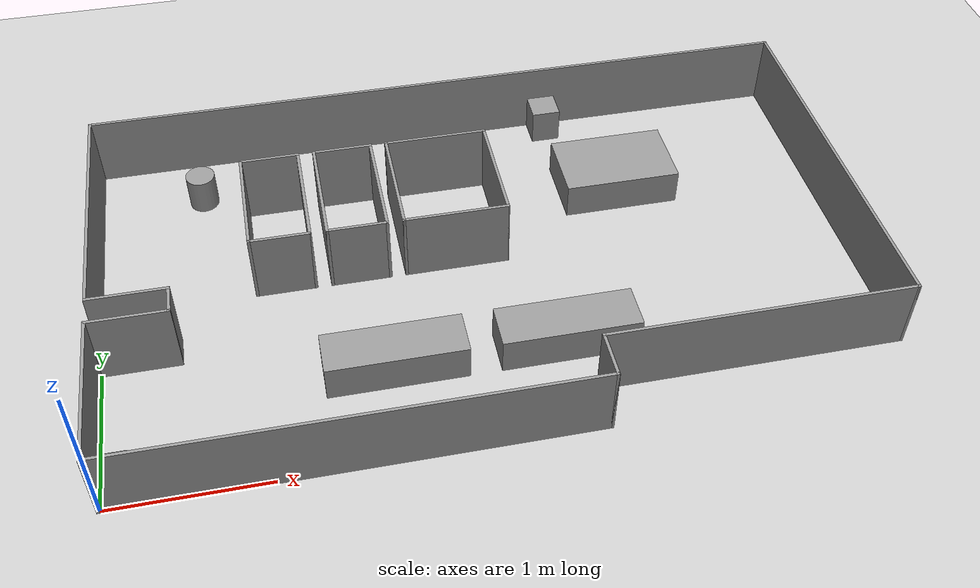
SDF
<sdf version="1.7">
 <world name="default">
  <light name="sun" type="directional">
   <pose>0 0 10 0 -0 0</pose>
   <diffuse>0.8 0.8 0.8 1</diffuse>
   <specular>0.2 0.2 0.2 1</specular>
   <attenuation>
    <range>1000</range>
    <constant>0.9</constant>
    <linear>0.01</linear>
    <quadratic>0.001</quadratic>
   </attenuation>
   <direction>-0.5 0.1 -0.9</direction>
   <spot><inner_angle>0</inner_angle><outer_angle>0</outer_angle><falloff>0</falloff></spot>
  </light>
  <model name="ground_plane">
   <static>1</static>
   <link name="link">
    <collision name="collision">
     <geometry><plane><normal>0 0 1</normal><size>100 100</size></plane></geometry>
     <surface>
      <contact><collide_bitmask>65535</collide_bitmask></contact>
      <friction><ode><mu>100</mu><mu2>50</mu2></ode></friction>
     </surface>
    </collision>
    <visual name="visual">
     <cast_shadows>0</cast_shadows>
     <geometry><plane><normal>0 0 1</normal><size>100 100</size></plane></geometry>
     <material>
      <script><uri>file://media/materials/scripts/gazebo.material</uri><name>Gazebo/Grey</name></script>
     </material>
    </visual>
   </link>
  </model>
  <gravity>0 0 -9.8</gravity>
  <magnetic_field>6e-06 2.3e-05 -4.2e-05</magnetic_field>
  <atmosphere type="adiabatic"/>
  <physics type="ode">
   <max_step_size>0.001</max_step_size>
   <real_time_factor>1</real_time_factor>
   <real_time_update_rate>1000</real_time_update_rate>
  </physics>
  <scene><ambient>0.4 0.4 0.4 1</ambient><background>0.7 0.7 0.7 1</background><shadows>1</shadows></scene>
  <spherical_coordinates>
   <surface_model>EARTH_WGS84</surface_model>
   <latitude_deg>0</latitude_deg>
   <longitude_deg>0</longitude_deg>
   <elevation>0</elevation>
   <heading_deg>0</heading_deg>
  </spherical_coordinates>
  <model name="turtlebot3_ttk4192">
   <pose>2.495 1.4495 0 0 -0 0</pose>
   <link name="Wall_10">
    <collision name="Wall_10_Collision">
     <geometry><box><size>0.21 0.02 0.5</size></box></geometry>
     <pose>0 0 0.25 0 -0 0</pose>
    </collision>
    <visual name="Wall_10_Visual">
     <pose>0 0 0.25 0 -0 0</pose>
     <geometry><box><size>0.21 0.02 0.5</size></box></geometry>
     <material>
      <script><uri>file://media/materials/scripts/gazebo.material</uri><name>Gazebo/Grey</name></script>
      <ambient>1 1 1 1</ambient>
     </material>
     <meta><layer>0</layer></meta>
    </visual>
    <pose>-2.005 -0.35 0 0 -0 -1.5708</pose>
   </link>
   <link name="Wall_11">
    <collision name="Wall_11_Collision">
     <geometry><box><size>0.52 0.02 0.5</size></box></geometry>
     <pose>0 0 0.25 0 -0 0</pose>
    </collision>
    <visual name="Wall_11_Visual">
     <pose>0 0 0.25 0 -0 0</pose>
     <geometry><box><size>0.52 0.02 0.5</size></box></geometry>
     <material>
      <script><uri>file://media/materials/scripts/gazebo.material</uri><name>Gazebo/Grey</name></script>
      <ambient>1 1 1 1</ambient>
     </material>
     <meta><layer>0</layer></meta>
    </visual>
    <pose>-2.255 -0.445 0 0 -0 3.14159</pose>
   </link>
   <link name="Wall_12">
    <collision name="Wall_12_Collision">
     <geometry><box><size>1.03 0.02 0.5</size></box></geometry>
     <pose>0 0 0.25 0 -0 0</pose>
    </collision>
    <visual name="Wall_12_Visual">
     <pose>0 0 0.25 0 -0 0</pose>
     <geometry><box><size>1.03 0.02 0.5</size></box></geometry>
     <material>
      <script><uri>file://media/materials/scripts/gazebo.material</uri><name>Gazebo/Grey</name></script>
      <ambient>1 1 1 1</ambient>
     </material>
     <meta><layer>0</layer></meta>
    </visual>
    <pose>-2.505 -0.95 0 0 -0 -1.5708</pose>
   </link>
   <link name="Wall_14">
    <collision name="Wall_14_Collision">
     <geometry><box><size>0.41 0.02 0.5</size></box></geometry>
     <pose>0 0 0.25 0 -0 0</pose>
    </collision>
    <visual name="Wall_14_Visual">
     <pose>0 0 0.25 0 -0 0</pose>
     <geometry><box><size>0.41 0.02 0.5</size></box></geometry>
     <material>
      <script><uri>file://media/materials/scripts/gazebo.material</uri><name>Gazebo/Grey</name></script>
      <ambient>1 1 1 1</ambient>
     </material>
     <meta><layer>0</layer></meta>
    </visual>
    <pose>-1.3 0.055 0 0 -0 0</pose>
   </link>
   <link name="Wall_15">
    <collision name="Wall_15_Collision">
     <geometry><box><size>0.81 0.02 0.5</size></box></geometry>
     <pose>0 0 0.25 0 -0 0</pose>
    </collision>
    <visual name="Wall_15_Visual">
     <pose>0 0 0.25 0 -0 0</pose>
     <geometry><box><size>0.81 0.02 0.5</size></box></geometry>
     <material>
      <script><uri>file://media/materials/scripts/gazebo.material</uri><name>Gazebo/Grey</name></script>
      <ambient>1 1 1 1</ambient>
     </material>
     <meta><layer>0</layer></meta>
    </visual>
    <pose>-1.105 0.45 0 0 -0 1.5708</pose>
   </link>
   <link name="Wall_16">
    <collision name="Wall_16_Collision">
     <geometry><box><size>0.41 0.02 0.5</size></box></geometry>
     <pose>0 0 0.25 0 -0 0</pose>
    </collision>
    <visual name="Wall_16_Visual">
     <pose>0 0 0.25 0 -0 0</pose>
     <geometry><box><size>0.41 0.02 0.5</size></box></geometry>
     <material>
      <script><uri>file://media/materials/scripts/gazebo.material</uri><name>Gazebo/Grey</name></script>
      <ambient>1 1 1 1</ambient>
     </material>
     <meta><layer>0</layer></meta>
    </visual>
    <pose>-1.3 0.845 0 0 -0 3.14159</pose>
   </link>
   <link name="Wall_17">
    <collision name="Wall_17_Collision">
     <geometry><box><size>0.81 0.02 0.5</size></box></geometry>
     <pose>0 0 0.25 0 -0 0</pose>
    </collision>
    <visual name="Wall_17_Visual">
     <pose>0 0 0.25 0 -0 0</pose>
     <geometry><box><size>0.81 0.02 0.5</size></box></geometry>
     <material>
      <script><uri>file://media/materials/scripts/gazebo.material</uri><name>Gazebo/Grey</name></script>
      <ambient>1 1 1 1</ambient>
     </material>
     <meta><layer>0</layer></meta>
    </visual>
    <pose>-1.495 0.45 0 0 -0 -1.5708</pose>
   </link>
   <link name="Wall_19">
    <collision name="Wall_19_Collision">
     <geometry><box><size>0.41 0.02 0.5</size></box></geometry>
     <pose>0 0 0.25 0 -0 0</pose>
    </collision>
    <visual name="Wall_19_Visual">
     <pose>0 0 0.25 0 -0 0</pose>
     <geometry><box><size>0.41 0.02 0.5</size></box></geometry>
     <material>
      <script><uri>file://media/materials/scripts/gazebo.material</uri><name>Gazebo/Grey</name></script>
      <ambient>1 1 1 1</ambient>
     </material>
     <meta><layer>0</layer></meta>
    </visual>
    <pose>-0.8 0.055 0 0 -0 0</pose>
   </link>
   <link name="Wall_20">
    <collision name="Wall_20_Collision">
     <geometry><box><size>0.81 0.02 0.5</size></box></geometry>
     <pose>0 0 0.25 0 -0 0</pose>
    </collision>
    <visual name="Wall_20_Visual">
     <pose>0 0 0.25 0 -0 0</pose>
     <geometry><box><size>0.81 0.02 0.5</size></box></geometry>
     <material>
      <script><uri>file://media/materials/scripts/gazebo.material</uri><name>Gazebo/Grey</name></script>
      <ambient>1 1 1 1</ambient>
     </material>
     <meta><layer>0</layer></meta>
    </visual>
    <pose>-0.605 0.45 0 0 -0 1.5708</pose>
   </link>
   <link name="Wall_21">
    <collision name="Wall_21_Collision">
     <geometry><box><size>0.41 0.02 0.5</size></box></geometry>
     <pose>0 0 0.25 0 -0 0</pose>
    </collision>
    <visual name="Wall_21_Visual">
     <pose>0 0 0.25 0 -0 0</pose>
     <geometry><box><size>0.41 0.02 0.5</size></box></geometry>
     <material>
      <script><uri>file://media/materials/scripts/gazebo.material</uri><name>Gazebo/Grey</name></script>
      <ambient>1 1 1 1</ambient>
     </material>
     <meta><layer>0</layer></meta>
    </visual>
    <pose>-0.8 0.845 0 0 -0 3.14159</pose>
   </link>
   <link name="Wall_22">
    <collision name="Wall_22_Collision">
     <geometry><box><size>0.81 0.02 0.5</size></box></geometry>
     <pose>0 0 0.25 0 -0 0</pose>
    </collision>
    <visual name="Wall_22_Visual">
     <pose>0 0 0.25 0 -0 0</pose>
     <geometry><box><size>0.81 0.02 0.5</size></box></geometry>
     <material>
      <script><uri>file://media/materials/scripts/gazebo.material</uri><name>Gazebo/Grey</name></script>
      <ambient>1 1 1 1</ambient>
     </material>
     <meta><layer>0</layer></meta>
    </visual>
    <pose>-0.995 0.45 0 0 -0 -1.5708</pose>
   </link>
   <link name="Wall_24">
    <collision name="Wall_24_Collision">
     <geometry><box><size>0.71 0.02 0.5</size></box></geometry>
     <pose>0 0 0.25 0 -0 0</pose>
    </collision>
    <visual name="Wall_24_Visual">
     <pose>0 0 0.25 0 -0 0</pose>
     <geometry><box><size>0.71 0.02 0.5</size></box></geometry>
     <material>
      <script><uri>file://media/materials/scripts/gazebo.material</uri><name>Gazebo/Grey</name></script>
      <ambient>1 1 1 1</ambient>
     </material>
     <meta><layer>0</layer></meta>
    </visual>
    <pose>-0.15 0.055 0 0 -0 0</pose>
   </link>
   <link name="Wall_25">
    <collision name="Wall_25_Collision">
     <geometry><box><size>0.81 0.02 0.5</size></box></geometry>
     <pose>0 0 0.25 0 -0 0</pose>
    </collision>
    <visual name="Wall_25_Visual">
     <pose>0 0 0.25 0 -0 0</pose>
     <geometry><box><size>0.81 0.02 0.5</size></box></geometry>
     <material>
      <script><uri>file://media/materials/scripts/gazebo.material</uri><name>Gazebo/Grey</name></script>
      <ambient>1 1 1 1</ambient>
     </material>
     <meta><layer>0</layer></meta>
    </visual>
    <pose>0.195 0.45 0 0 -0 1.5708</pose>
   </link>
   <link name="Wall_26">
    <collision name="Wall_26_Collision">
     <geometry><box><size>0.71 0.02 0.5</size></box></geometry>
     <pose>0 0 0.25 0 -0 0</pose>
    </collision>
    <visual name="Wall_26_Visual">
     <pose>0 0 0.25 0 -0 0</pose>
     <geometry><box><size>0.71 0.02 0.5</size></box></geometry>
     <material>
      <script><uri>file://media/materials/scripts/gazebo.material</uri><name>Gazebo/Grey</name></script>
      <ambient>1 1 1 1</ambient>
     </material>
     <meta><layer>0</layer></meta>
    </visual>
    <pose>-0.15 0.845 0 0 -0 3.14159</pose>
   </link>
   <link name="Wall_27">
    <collision name="Wall_27_Collision">
     <geometry><box><size>0.81 0.02 0.5</size></box></geometry>
     <pose>0 0 0.25 0 -0 0</pose>
    </collision>
    <visual name="Wall_27_Visual">
     <pose>0 0 0.25 0 -0 0</pose>
     <geometry><box><size>0.81 0.02 0.5</size></box></geometry>
     <material>
      <script><uri>file://media/materials/scripts/gazebo.material</uri><name>Gazebo/Grey</name></script>
      <ambient>1 1 1 1</ambient>
     </material>
     <meta><layer>0</layer></meta>
    </visual>
    <pose>-0.495 0.45 0 0 -0 -1.5708</pose>
   </link>
   <link name="Wall_3">
    <collision name="Wall_3_Collision">
     <geometry><box><size>3.03 0.02 0.5</size></box></geometry>
     <pose>0 0 0.25 0 -0 0</pose>
    </collision>
    <visual name="Wall_3_Visual">
     <pose>0 0 0.25 0 -0 0</pose>
     <geometry><box><size>3.03 0.02 0.5</size></box></geometry>
     <material>
      <script><uri>file://media/materials/scripts/gazebo.material</uri><name>Gazebo/Grey</name></script>
      <ambient>1 1 1 1</ambient>
     </material>
     <meta><layer>0</layer></meta>
    </visual>
    <pose>-1 -1.455 0 0 -0 0</pose>
   </link>
   <link name="Wall_4">
    <collision name="Wall_4_Collision">
     <geometry><box><size>0.32 0.02 0.5</size></box></geometry>
     <pose>0 0 0.25 0 -0 0</pose>
    </collision>
    <visual name="Wall_4_Visual">
     <pose>0 0 0.25 0 -0 0</pose>
     <geometry><box><size>0.32 0.02 0.5</size></box></geometry>
     <material>
      <script><uri>file://media/materials/scripts/gazebo.material</uri><name>Gazebo/Grey</name></script>
      <ambient>1 1 1 1</ambient>
     </material>
     <meta><layer>0</layer></meta>
    </visual>
    <pose>0.505 -1.305 0 0 -0 1.5708</pose>
   </link>
   <link name="Wall_5">
    <collision name="Wall_5_Collision">
     <geometry><box><size>2.02 0.02 0.5</size></box></geometry>
     <pose>0 0 0.25 0 -0 0</pose>
    </collision>
    <visual name="Wall_5_Visual">
     <pose>0 0 0.25 0 -0 0</pose>
     <geometry><box><size>2.02 0.02 0.5</size></box></geometry>
     <material>
      <script><uri>file://media/materials/scripts/gazebo.material</uri><name>Gazebo/Grey</name></script>
      <ambient>1 1 1 1</ambient>
     </material>
     <meta><layer>0</layer></meta>
    </visual>
    <pose>1.505 -1.155 0 0 -0 0</pose>
   </link>
   <link name="Wall_6">
    <collision name="Wall_6_Collision">
     <geometry><box><size>2.63 0.02 0.5</size></box></geometry>
     <pose>0 0 0.25 0 -0 0</pose>
    </collision>
    <visual name="Wall_6_Visual">
     <pose>0 0 0.25 0 -0 0</pose>
     <geometry><box><size>2.63 0.02 0.5</size></box></geometry>
     <material>
      <script><uri>file://media/materials/scripts/gazebo.material</uri><name>Gazebo/Grey</name></script>
      <ambient>1 1 1 1</ambient>
     </material>
     <meta><layer>0</layer></meta>
    </visual>
    <pose>2.505 0.15 0 0 -0 1.5708</pose>
   </link>
   <link name="Wall_7">
    <collision name="Wall_7_Collision">
     <geometry><box><size>5.03 0.02 0.5</size></box></geometry>
     <pose>0 0 0.25 0 -0 0</pose>
    </collision>
    <visual name="Wall_7_Visual">
     <pose>0 0 0.25 0 -0 0</pose>
     <geometry><box><size>5.03 0.02 0.5</size></box></geometry>
     <material>
      <script><uri>file://media/materials/scripts/gazebo.material</uri><name>Gazebo/Grey</name></script>
      <ambient>1 1 1 1</ambient>
     </material>
     <meta><layer>0</layer></meta>
    </visual>
    <pose>-0 1.455 0 0 -0 3.14159</pose>
   </link>
   <link name="Wall_8">
    <collision name="Wall_8_Collision">
     <geometry><box><size>1.73 0.02 0.5</size></box></geometry>
     <pose>0 0 0.25 0 -0 0</pose>
    </collision>
    <visual name="Wall_8_Visual">
     <pose>0 0 0.25 0 -0 0</pose>
     <geometry><box><size>1.73 0.02 0.5</size></box></geometry>
     <material>
      <script><uri>file://media/materials/scripts/gazebo.material</uri><name>Gazebo/Grey</name></script>
      <ambient>1 1 1 1</ambient>
     </material>
     <meta><layer>0</layer></meta>
    </visual>
    <pose>-2.505 0.6 0 0 -0 -1.5708</pose>
   </link>
   <link name="Wall_9">
    <collision name="Wall_9_Collision">
     <geometry><box><size>0.52 0.02 0.5</size></box></geometry>
     <pose>0 0 0.25 0 -0 0</pose>
    </collision>
    <visual name="Wall_9_Visual">
     <pose>0 0 0.25 0 -0 0</pose>
     <geometry><box><size>0.52 0.02 0.5</size></box></geometry>
     <material>
      <script><uri>file://media/materials/scripts/gazebo.material</uri><name>Gazebo/Grey</name></script>
      <ambient>1 1 1 1</ambient>
     </material>
     <meta><layer>0</layer></meta>
    </visual>
    <pose>-2.255 -0.255 0 0 -0 0</pose>
   </link>
   <static>1</static>
  </model>
  <model name="wp0">
   <link name="link">
    <inertial>
     <mass>1</mass>
     <inertia>
      <ixx>0.166667</ixx>
      <ixy>0</ixy>
      <ixz>0</ixz>
      <iyy>0.166667</iyy>
      <iyz>0</iyz>
      <izz>0.166667</izz>
     </inertia>
    </inertial>
    <visual name="visual">
     <geometry><box><size>0.2 0.2 0.25</size></box></geometry>
     <material>
      <script><name>Gazebo/Grey</name><uri>file://media/materials/scripts/gazebo.material</uri></script>
      <shader type="pixel"><normal_map>__default__</normal_map></shader>
      <ambient>0.3 0.3 0.3 1</ambient>
      <diffuse>0.7 0.7 0.7 1</diffuse>
      <specular>0.01 0.01 0.01 1</specular>
      <emissive>0 0 0 1</emissive>
     </material>
     <pose>0 0 0.25 0 -0 0</pose>
    </visual>
    <collision name="collision">
     <pose>0 0 0.25 0 -0 0</pose>
     <geometry><box><size>0.2 0.2 0.25</size></box></geometry>
     <surface>
      <friction>
       <ode><mu>1</mu><mu2>1</mu2><fdir1>0 0 0</fdir1><slip1>0</slip1><slip2>0</slip2></ode>
       <torsional>
        <coefficient>1</coefficient>
        <patch_radius>0</patch_radius>
        <surface_radius>0</surface_radius>
        <use_patch_radius>1</use_patch_radius>
        <ode><slip>0</slip></ode>
       </torsional>
      </friction>
      <bounce><restitution_coefficient>0</restitution_coefficient><threshold>1e+06</threshold></bounce>
      <contact>
       <collide_without_contact>0</collide_without_contact>
       <collide_without_contact_bitmask>1</collide_without_contact_bitmask>
       <collide_bitmask>1</collide_bitmask>
       <ode>
        <soft_cfm>0</soft_cfm>
        <soft_erp>0.2</soft_erp>
        <kp>1e+13</kp>
        <kd>1</kd>
        <max_vel>0.01</max_vel>
        <min_depth>0</min_depth>
       </ode>
       <bullet>
        <split_impulse>1</split_impulse>
        <split_impulse_penetration_threshold>-0.01</split_impulse_penetration_threshold>
        <soft_cfm>0</soft_cfm>
        <soft_erp>0.2</soft_erp>
        <kp>1e+13</kp>
        <kd>1</kd>
       </bullet>
      </contact>
     </surface>
    </collision>
   </link>
   <static>0</static>
   <pose>0.100005 0.104504 -0.125 -4e-06 -0 -1.3e-05</pose>
  </model>
  <model name="wp3">
   <link name="link">
    <inertial>
     <mass>1</mass>
     <inertia>
      <ixx>0.166667</ixx>
      <ixy>0</ixy>
      <ixz>0</ixz>
      <iyy>0.166667</iyy>
      <iyz>0</iyz>
      <izz>0.166667</izz>
     </inertia>
    </inertial>
    <visual name="visual">
     <geometry><box><size>0.2 0.2 0.25</size></box></geometry>
     <material>
      <script><name>Gazebo/Grey</name><uri>file://media/materials/scripts/gazebo.material</uri></script>
      <shader type="pixel"><normal_map>__default__</normal_map></shader>
      <ambient>0.3 0.3 0.3 1</ambient>
      <diffuse>0.7 0.7 0.7 1</diffuse>
      <specular>0.01 0.01 0.01 1</specular>
      <emissive>0 0 0 1</emissive>
     </material>
     <pose>0 0 0.25 0 -0 0</pose>
    </visual>
    <collision name="collision">
     <pose>0 0 0.25 0 -0 0</pose>
     <geometry><box><size>0.2 0.2 0.25</size></box></geometry>
     <surface>
      <friction>
       <ode><mu>1</mu><mu2>1</mu2><fdir1>0 0 0</fdir1><slip1>0</slip1><slip2>0</slip2></ode>
       <torsional>
        <coefficient>1</coefficient>
        <patch_radius>0</patch_radius>
        <surface_radius>0</surface_radius>
        <use_patch_radius>1</use_patch_radius>
        <ode><slip>0</slip></ode>
       </torsional>
      </friction>
      <bounce><restitution_coefficient>0</restitution_coefficient><threshold>1e+06</threshold></bounce>
      <contact>
       <collide_without_contact>0</collide_without_contact>
       <collide_without_contact_bitmask>1</collide_without_contact_bitmask>
       <collide_bitmask>1</collide_bitmask>
       <ode>
        <soft_cfm>0</soft_cfm>
        <soft_erp>0.2</soft_erp>
        <kp>1e+13</kp>
        <kd>1</kd>
        <max_vel>0.01</max_vel>
        <min_depth>0</min_depth>
       </ode>
       <bullet>
        <split_impulse>1</split_impulse>
        <split_impulse_penetration_threshold>-0.01</split_impulse_penetration_threshold>
        <soft_cfm>0</soft_cfm>
        <soft_erp>0.2</soft_erp>
        <kp>1e+13</kp>
        <kd>1</kd>
       </bullet>
      </contact>
     </surface>
    </collision>
   </link>
   <static>0</static>
   <pose>3.25 2.7945 -0.125001 2e-06 -4e-06 -2e-06</pose>
  </model>
  <model name="wp4">
   <link name="link">
    <inertial>
     <mass>1</mass>
     <inertia>
      <ixx>0.166667</ixx>
      <ixy>0</ixy>
      <ixz>0</ixz>
      <iyy>0.166667</iyy>
      <iyz>0</iyz>
      <izz>0.166667</izz>
     </inertia>
    </inertial>
    <visual name="visual">
     <geometry><box><size>0.2 0.2 0.25</size></box></geometry>
     <material>
      <script><name>Gazebo/Grey</name><uri>file://media/materials/scripts/gazebo.material</uri></script>
      <shader type="pixel"><normal_map>__default__</normal_map></shader>
      <ambient>0.3 0.3 0.3 1</ambient>
      <diffuse>0.7 0.7 0.7 1</diffuse>
      <specular>0.01 0.01 0.01 1</specular>
      <emissive>0 0 0 1</emissive>
     </material>
     <pose>0 0 0.25 0 -0 0</pose>
    </visual>
    <collision name="collision">
     <pose>0 0 0.25 0 -0 0</pose>
     <geometry><box><size>0.2 0.2 0.25</size></box></geometry>
     <surface>
      <friction>
       <ode><mu>1</mu><mu2>1</mu2><fdir1>0 0 0</fdir1><slip1>0</slip1><slip2>0</slip2></ode>
       <torsional>
        <coefficient>1</coefficient>
        <patch_radius>0</patch_radius>
        <surface_radius>0</surface_radius>
        <use_patch_radius>1</use_patch_radius>
        <ode><slip>0</slip></ode>
       </torsional>
      </friction>
      <bounce><restitution_coefficient>0</restitution_coefficient><threshold>1e+06</threshold></bounce>
      <contact>
       <collide_without_contact>0</collide_without_contact>
       <collide_without_contact_bitmask>1</collide_without_contact_bitmask>
       <collide_bitmask>1</collide_bitmask>
       <ode>
        <soft_cfm>0</soft_cfm>
        <soft_erp>0.2</soft_erp>
        <kp>1e+13</kp>
        <kd>1</kd>
        <max_vel>0.01</max_vel>
        <min_depth>0</min_depth>
       </ode>
       <bullet>
        <split_impulse>1</split_impulse>
        <split_impulse_penetration_threshold>-0.01</split_impulse_penetration_threshold>
        <soft_cfm>0</soft_cfm>
        <soft_erp>0.2</soft_erp>
        <kp>1e+13</kp>
        <kd>1</kd>
       </bullet>
      </contact>
     </surface>
    </collision>
   </link>
   <static>0</static>
   <pose>4.89001 0.4045 -0.125 1e-06 0 3e-06</pose>
  </model>
  <model name="wp6">
   <link name="link">
    <inertial>
     <mass>1</mass>
     <inertia>
      <ixx>0.166667</ixx>
      <ixy>0</ixy>
      <ixz>0</ixz>
      <iyy>0.166667</iyy>
      <iyz>0</iyz>
      <izz>0.166667</izz>
     </inertia>
    </inertial>
    <visual name="visual">
     <geometry><box><size>0.8 0.5 0.25</size></box></geometry>
     <material>
      <script><name>Gazebo/Grey</name><uri>file://media/materials/scripts/gazebo.material</uri></script>
      <shader type="pixel"><normal_map>__default__</normal_map></shader>
      <ambient>0.3 0.3 0.3 1</ambient>
      <diffuse>0.7 0.7 0.7 1</diffuse>
      <specular>0.01 0.01 0.01 1</specular>
      <emissive>0 0 0 1</emissive>
     </material>
     <pose>0 0 0.25 0 -0 0</pose>
    </visual>
    <collision name="collision">
     <pose>0 0 0.25 0 -0 0</pose>
     <geometry><box><size>0.8 0.5 0.25</size></box></geometry>
     <surface>
      <friction>
       <ode><mu>1</mu><mu2>1</mu2><fdir1>0 0 0</fdir1><slip1>0</slip1><slip2>0</slip2></ode>
       <torsional>
        <coefficient>1</coefficient>
        <patch_radius>0</patch_radius>
        <surface_radius>0</surface_radius>
        <use_patch_radius>1</use_patch_radius>
        <ode><slip>0</slip></ode>
       </torsional>
      </friction>
      <bounce><restitution_coefficient>0</restitution_coefficient><threshold>1e+06</threshold></bounce>
      <contact>
       <collide_without_contact>0</collide_without_contact>
       <collide_without_contact_bitmask>1</collide_without_contact_bitmask>
       <collide_bitmask>1</collide_bitmask>
       <ode>
        <soft_cfm>0</soft_cfm>
        <soft_erp>0.2</soft_erp>
        <kp>1e+13</kp>
        <kd>1</kd>
        <max_vel>0.01</max_vel>
        <min_depth>0</min_depth>
       </ode>
       <bullet>
        <split_impulse>1</split_impulse>
        <split_impulse_penetration_threshold>-0.01</split_impulse_penetration_threshold>
        <soft_cfm>0</soft_cfm>
        <soft_erp>0.2</soft_erp>
        <kp>1e+13</kp>
        <kd>1</kd>
       </bullet>
      </contact>
     </surface>
    </collision>
   </link>
   <static>0</static>
   <pose>3.6 2.1 -0.125 0 -0 -2e-06</pose>
  </model>
  <model name="wp2">
   <link name="link">
    <inertial>
     <mass>1</mass>
     <inertia>
      <ixx>0.166667</ixx>
      <ixy>0</ixy>
      <ixz>0</ixz>
      <iyy>0.166667</iyy>
      <iyz>0</iyz>
      <izz>0.166667</izz>
     </inertia>
    </inertial>
    <visual name="visual">
     <geometry><box><size>0.9 0.3 0.25</size></box></geometry>
     <material>
      <script><name>Gazebo/Grey</name><uri>file://media/materials/scripts/gazebo.material</uri></script>
      <shader type="pixel"><normal_map>__default__</normal_map></shader>
      <ambient>0.3 0.3 0.3 1</ambient>
      <diffuse>0.7 0.7 0.7 1</diffuse>
      <specular>0.01 0.01 0.01 1</specular>
      <emissive>0 0 0 1</emissive>
     </material>
     <pose>0 0 0.25 0 -0 0</pose>
    </visual>
    <collision name="collision">
     <pose>0 0 0.25 0 -0 0</pose>
     <geometry><box><size>0.9 0.3 0.25</size></box></geometry>
     <surface>
      <friction>
       <ode><mu>1</mu><mu2>1</mu2><fdir1>0 0 0</fdir1><slip1>0</slip1><slip2>0</slip2></ode>
       <torsional>
        <coefficient>1</coefficient>
        <patch_radius>0</patch_radius>
        <surface_radius>0</surface_radius>
        <use_patch_radius>1</use_patch_radius>
        <ode><slip>0</slip></ode>
       </torsional>
      </friction>
      <bounce><restitution_coefficient>0</restitution_coefficient><threshold>1e+06</threshold></bounce>
      <contact>
       <collide_without_contact>0</collide_without_contact>
       <collide_without_contact_bitmask>1</collide_without_contact_bitmask>
       <collide_bitmask>1</collide_bitmask>
       <ode>
        <soft_cfm>0</soft_cfm>
        <soft_erp>0.2</soft_erp>
        <kp>1e+13</kp>
        <kd>1</kd>
        <max_vel>0.01</max_vel>
        <min_depth>0</min_depth>
       </ode>
       <bullet>
        <split_impulse>1</split_impulse>
        <split_impulse_penetration_threshold>-0.01</split_impulse_penetration_threshold>
        <soft_cfm>0</soft_cfm>
        <soft_erp>0.2</soft_erp>
        <kp>1e+13</kp>
        <kd>1</kd>
       </bullet>
      </contact>
     </surface>
    </collision>
   </link>
   <static>0</static>
   <pose>2.9 0.7 -0.125 0 0 -4e-06</pose>
  </model>
  <model name="wp5">
   <link name="link">
    <inertial>
     <mass>1</mass>
     <inertia><ixx>0.145833</ixx><ixy>0</ixy><ixz>0</ixz><iyy>0.145833</iyy><iyz>0</iyz><izz>0.125</izz></inertia>
    </inertial>
    <visual name="visual">
     <geometry><cylinder><radius>0.1</radius><length>0.25</length></cylinder></geometry>
     <material>
      <script><name>Gazebo/Grey</name><uri>file://media/materials/scripts/gazebo.material</uri></script>
      <shader type="pixel"><normal_map>__default__</normal_map></shader>
      <ambient>0.3 0.3 0.3 1</ambient>
      <diffuse>0.7 0.7 0.7 1</diffuse>
      <specular>0.01 0.01 0.01 1</specular>
      <emissive>0 0 0 1</emissive>
     </material>
     <pose>0 0 0.25 0 -0 0</pose>
    </visual>
    <collision name="collision">
     <pose>0 0 0.25 0 -0 0</pose>
     <geometry><cylinder><radius>0.1</radius><length>0.25</length></cylinder></geometry>
     <surface>
      <friction>
       <ode><mu>1</mu><mu2>1</mu2><fdir1>0 0 0</fdir1><slip1>0</slip1><slip2>0</slip2></ode>
       <torsional>
        <coefficient>1</coefficient>
        <patch_radius>0</patch_radius>
        <surface_radius>0</surface_radius>
        <use_patch_radius>1</use_patch_radius>
        <ode><slip>0</slip></ode>
       </torsional>
      </friction>
      <bounce><restitution_coefficient>0</restitution_coefficient><threshold>1e+06</threshold></bounce>
      <contact>
       <collide_without_contact>0</collide_without_contact>
       <collide_without_contact_bitmask>1</collide_without_contact_bitmask>
       <collide_bitmask>1</collide_bitmask>
       <ode>
        <soft_cfm>0</soft_cfm>
        <soft_erp>0.2</soft_erp>
        <kp>1e+13</kp>
        <kd>1</kd>
        <max_vel>0.01</max_vel>
        <min_depth>0</min_depth>
       </ode>
       <bullet>
        <split_impulse>1</split_impulse>
        <split_impulse_penetration_threshold>-0.01</split_impulse_penetration_threshold>
        <soft_cfm>0</soft_cfm>
        <soft_erp>0.2</soft_erp>
        <kp>1e+13</kp>
        <kd>1</kd>
       </bullet>
      </contact>
     </surface>
    </collision>
   </link>
   <static>0</static>
   <pose>0.7 2.5 -0.125006 0 -0 0</pose>
  </model>
  <model name="wp1">
   <link name="link">
    <inertial>
     <mass>1</mass>
     <inertia>
      <ixx>0.166667</ixx>
      <ixy>0</ixy>
      <ixz>0</ixz>
      <iyy>0.166667</iyy>
      <iyz>0</iyz>
      <izz>0.166667</izz>
     </inertia>
    </inertial>
    <visual name="visual">
     <geometry><box><size>0.9 0.3 0.25</size></box></geometry>
     <material>
      <script><name>Gazebo/Grey</name><uri>file://media/materials/scripts/gazebo.material</uri></script>
      <shader type="pixel"><normal_map>__default__</normal_map></shader>
      <ambient>0.3 0.3 0.3 1</ambient>
      <diffuse>0.7 0.7 0.7 1</diffuse>
      <specular>0.01 0.01 0.01 1</specular>
      <emissive>0 0 0 1</emissive>
     </material>
     <pose>0 0 0.125 0 -0 0</pose>
    </visual>
    <collision name="collision">
     <pose>0 0 0.125 0 -0 0</pose>
     <geometry><box><size>0.9 0.3 0.25</size></box></geometry>
     <surface>
      <friction>
       <ode><mu>1</mu><mu2>1</mu2><fdir1>0 0 0</fdir1><slip1>0</slip1><slip2>0</slip2></ode>
       <torsional>
        <coefficient>1</coefficient>
        <patch_radius>0</patch_radius>
        <surface_radius>0</surface_radius>
        <use_patch_radius>1</use_patch_radius>
        <ode><slip>0</slip></ode>
       </torsional>
      </friction>
      <bounce><restitution_coefficient>0</restitution_coefficient><threshold>1e+06</threshold></bounce>
      <contact>
       <collide_without_contact>0</collide_without_contact>
       <collide_without_contact_bitmask>1</collide_without_contact_bitmask>
       <collide_bitmask>1</collide_bitmask>
       <ode>
        <soft_cfm>0</soft_cfm>
        <soft_erp>0.2</soft_erp>
        <kp>1e+13</kp>
        <kd>1</kd>
        <max_vel>0.01</max_vel>
        <min_depth>0</min_depth>
       </ode>
       <bullet>
        <split_impulse>1</split_impulse>
        <split_impulse_penetration_threshold>-0.01</split_impulse_penetration_threshold>
        <soft_cfm>0</soft_cfm>
        <soft_erp>0.2</soft_erp>
        <kp>1e+13</kp>
        <kd>1</kd>
       </bullet>
      </contact>
     </surface>
    </collision>
   </link>
   <static>0</static>
   <pose>1.8 0.7 -0 0 0 -4e-06</pose>
  </model>
 </world>
</sdf>
